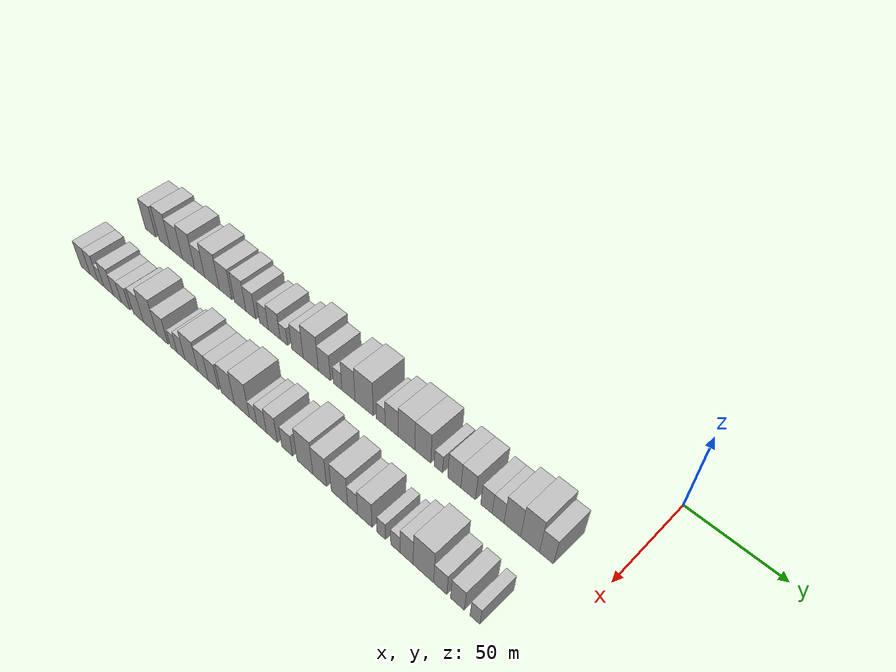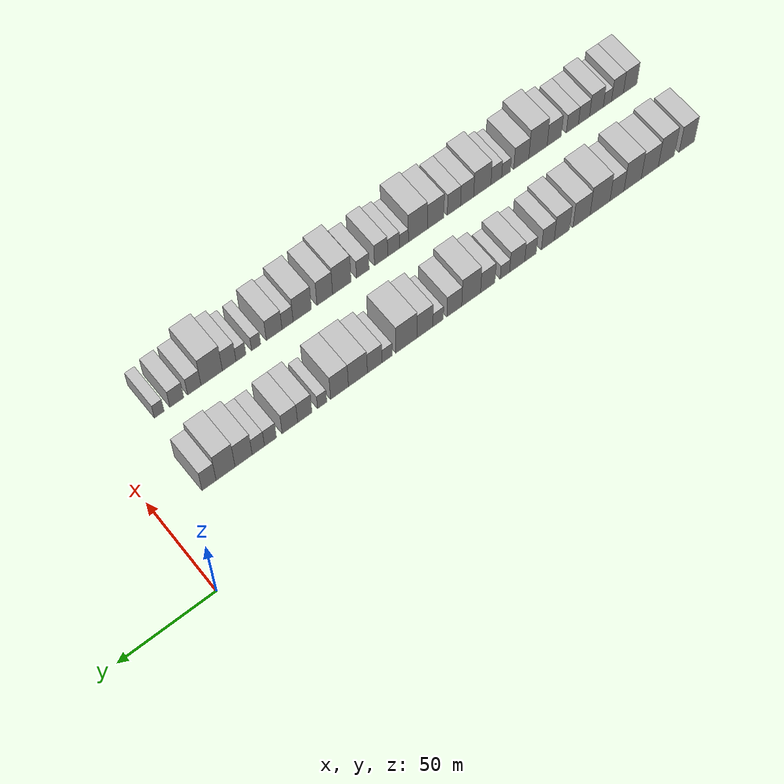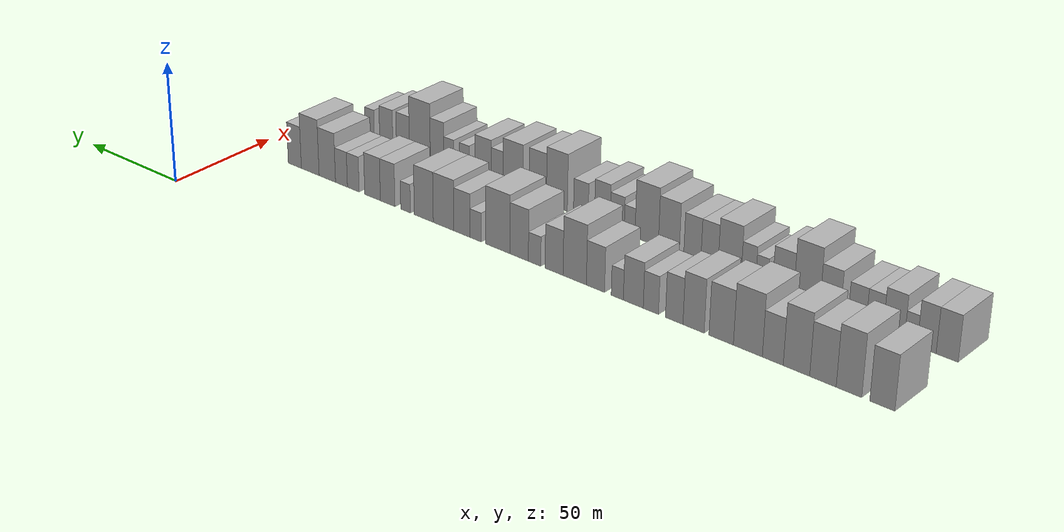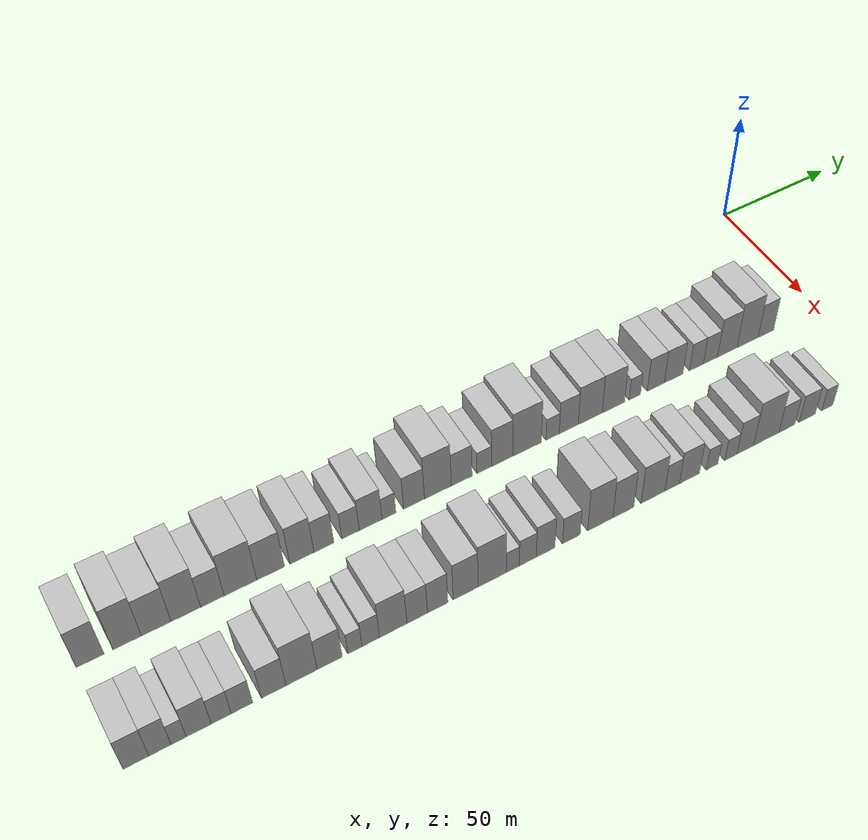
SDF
<sdf version="1.6">
 <world name="default">
  <model name="building_1">
   <static>1</static>
   <pose>50.0000 -295.3019 0 0.000000 0.000000 0.000000</pose>
   <link name="link">
    <pose>0 0 10.50 0 0 0</pose>
    <collision name="collision"><geometry><box><size>20.0000 9.3963 21.0000</size></box></geometry></collision>
    <visual name="visual">
     <cast_shadows>0</cast_shadows>
     <geometry><box><size>20.0000 9.3963 21.0000</size></box></geometry>
     <material>
      <script>
       <uri>model://HANNAS_wall/materials/scripts</uri>
       <uri>model://HANNAS_wall/materials/textures</uri>
       <name>vrc/HANNAS_wall</name>
      </script>
     </material>
    </visual>
   </link>
  </model>
  <model name="building_2">
   <static>1</static>
   <pose>50.0000 -282.7249 0 0.000000 0.000000 0.000000</pose>
   <link name="link">
    <pose>0 0 12.00 0 0 0</pose>
    <collision name="collision"><geometry><box><size>20.0000 9.7576 24.0000</size></box></geometry></collision>
    <visual name="visual">
     <cast_shadows>0</cast_shadows>
     <geometry><box><size>20.0000 9.7576 24.0000</size></box></geometry>
     <material>
      <script>
       <uri>model://HANNAS_wall/materials/scripts</uri>
       <uri>model://HANNAS_wall/materials/textures</uri>
       <name>vrc/HANNAS_wall</name>
      </script>
     </material>
    </visual>
   </link>
  </model>
  <model name="building_3">
   <static>1</static>
   <pose>50.0000 -272.7034 0 0.000000 0.000000 0.000000</pose>
   <link name="link">
    <pose>0 0 10.50 0 0 0</pose>
    <collision name="collision"><geometry><box><size>20.0000 10.2854 21.0000</size></box></geometry></collision>
    <visual name="visual">
     <cast_shadows>0</cast_shadows>
     <geometry><box><size>20.0000 10.2854 21.0000</size></box></geometry>
     <material>
      <script>
       <uri>model://HANNAS_wall/materials/scripts</uri>
       <uri>model://HANNAS_wall/materials/textures</uri>
       <name>vrc/HANNAS_wall</name>
      </script>
     </material>
    </visual>
   </link>
  </model>
  <model name="building_4">
   <static>1</static>
   <pose>50.0000 -262.3470 0 0.000000 0.000000 0.000000</pose>
   <link name="link">
    <pose>0 0 12.00 0 0 0</pose>
    <collision name="collision"><geometry><box><size>20.0000 10.4274 24.0000</size></box></geometry></collision>
    <visual name="visual">
     <cast_shadows>0</cast_shadows>
     <geometry><box><size>20.0000 10.4274 24.0000</size></box></geometry>
     <material>
      <script>
       <uri>model://HANNAS_wall/materials/scripts</uri>
       <uri>model://HANNAS_wall/materials/textures</uri>
       <name>vrc/HANNAS_wall</name>
      </script>
     </material>
    </visual>
   </link>
  </model>
  <model name="building_5">
   <static>1</static>
   <pose>50.0000 -252.9480 0 0.000000 0.000000 0.000000</pose>
   <link name="link">
    <pose>0 0 9.00 0 0 0</pose>
    <collision name="collision"><geometry><box><size>20.0000 8.3706 18.0000</size></box></geometry></collision>
    <visual name="visual">
     <cast_shadows>0</cast_shadows>
     <geometry><box><size>20.0000 8.3706 18.0000</size></box></geometry>
     <material>
      <script>
       <uri>model://HANNAS_wall/materials/scripts</uri>
       <uri>model://HANNAS_wall/materials/textures</uri>
       <name>vrc/HANNAS_wall</name>
      </script>
     </material>
    </visual>
   </link>
  </model>
  <model name="building_6">
   <static>1</static>
   <pose>50.0000 -242.8675 0 0.000000 0.000000 0.000000</pose>
   <link name="link">
    <pose>0 0 12.00 0 0 0</pose>
    <collision name="collision"><geometry><box><size>20.0000 11.7904 24.0000</size></box></geometry></collision>
    <visual name="visual">
     <cast_shadows>0</cast_shadows>
     <geometry><box><size>20.0000 11.7904 24.0000</size></box></geometry>
     <material>
      <script>
       <uri>model://HANNAS_wall/materials/scripts</uri>
       <uri>model://HANNAS_wall/materials/textures</uri>
       <name>vrc/HANNAS_wall</name>
      </script>
     </material>
    </visual>
   </link>
  </model>
  <model name="building_7">
   <static>1</static>
   <pose>50.0000 -231.9022 0 0.000000 0.000000 0.000000</pose>
   <link name="link">
    <pose>0 0 10.50 0 0 0</pose>
    <collision name="collision"><geometry><box><size>20.0000 10.1402 21.0000</size></box></geometry></collision>
    <visual name="visual">
     <cast_shadows>0</cast_shadows>
     <geometry><box><size>20.0000 10.1402 21.0000</size></box></geometry>
     <material>
      <script>
       <uri>model://HANNAS_wall/materials/scripts</uri>
       <uri>model://HANNAS_wall/materials/textures</uri>
       <name>vrc/HANNAS_wall</name>
      </script>
     </material>
    </visual>
   </link>
  </model>
  <model name="building_8">
   <static>1</static>
   <pose>50.0000 -220.3504 0 0.000000 0.000000 0.000000</pose>
   <link name="link">
    <pose>0 0 10.50 0 0 0</pose>
    <collision name="collision"><geometry><box><size>20.0000 8.9634 21.0000</size></box></geometry></collision>
    <visual name="visual">
     <cast_shadows>0</cast_shadows>
     <geometry><box><size>20.0000 8.9634 21.0000</size></box></geometry>
     <material>
      <script>
       <uri>model://HANNAS_wall/materials/scripts</uri>
       <uri>model://HANNAS_wall/materials/textures</uri>
       <name>vrc/HANNAS_wall</name>
      </script>
     </material>
    </visual>
   </link>
  </model>
  <model name="building_9">
   <static>1</static>
   <pose>50.0000 -212.1136 0 0.000000 0.000000 0.000000</pose>
   <link name="link">
    <pose>0 0 9.00 0 0 0</pose>
    <collision name="collision"><geometry><box><size>20.0000 7.5102 18.0000</size></box></geometry></collision>
    <visual name="visual">
     <cast_shadows>0</cast_shadows>
     <geometry><box><size>20.0000 7.5102 18.0000</size></box></geometry>
     <material>
      <script>
       <uri>model://HANNAS_wall/materials/scripts</uri>
       <uri>model://HANNAS_wall/materials/textures</uri>
       <name>vrc/HANNAS_wall</name>
      </script>
     </material>
    </visual>
   </link>
  </model>
  <model name="building_10">
   <static>1</static>
   <pose>50.0000 -202.0355 0 0.000000 0.000000 0.000000</pose>
   <link name="link">
    <pose>0 0 7.50 0 0 0</pose>
    <collision name="collision"><geometry><box><size>20.0000 6.6459 15.0000</size></box></geometry></collision>
    <visual name="visual">
     <cast_shadows>0</cast_shadows>
     <geometry><box><size>20.0000 6.6459 15.0000</size></box></geometry>
     <material>
      <script>
       <uri>model://HANNAS_wall/materials/scripts</uri>
       <uri>model://HANNAS_wall/materials/textures</uri>
       <name>vrc/HANNAS_wall</name>
      </script>
     </material>
    </visual>
   </link>
  </model>
  <model name="building_11">
   <static>1</static>
   <pose>50.0000 -194.3298 0 0.000000 0.000000 0.000000</pose>
   <link name="link">
    <pose>0 0 9.00 0 0 0</pose>
    <collision name="collision"><geometry><box><size>20.0000 8.7655 18.0000</size></box></geometry></collision>
    <visual name="visual">
     <cast_shadows>0</cast_shadows>
     <geometry><box><size>20.0000 8.7655 18.0000</size></box></geometry>
     <material>
      <script>
       <uri>model://HANNAS_wall/materials/scripts</uri>
       <uri>model://HANNAS_wall/materials/textures</uri>
       <name>vrc/HANNAS_wall</name>
      </script>
     </material>
    </visual>
   </link>
  </model>
  <model name="building_12">
   <static>1</static>
   <pose>50.0000 -187.2509 0 0.000000 0.000000 0.000000</pose>
   <link name="link">
    <pose>0 0 6.00 0 0 0</pose>
    <collision name="collision"><geometry><box><size>20.0000 5.3923 12.0000</size></box></geometry></collision>
    <visual name="visual">
     <cast_shadows>0</cast_shadows>
     <geometry><box><size>20.0000 5.3923 12.0000</size></box></geometry>
     <material>
      <script>
       <uri>model://HANNAS_wall/materials/scripts</uri>
       <uri>model://HANNAS_wall/materials/textures</uri>
       <name>vrc/HANNAS_wall</name>
      </script>
     </material>
    </visual>
   </link>
  </model>
  <model name="building_13">
   <static>1</static>
   <pose>50.0000 -177.4368 0 0.000000 0.000000 0.000000</pose>
   <link name="link">
    <pose>0 0 9.00 0 0 0</pose>
    <collision name="collision"><geometry><box><size>20.0000 8.2360 18.0000</size></box></geometry></collision>
    <visual name="visual">
     <cast_shadows>0</cast_shadows>
     <geometry><box><size>20.0000 8.2360 18.0000</size></box></geometry>
     <material>
      <script>
       <uri>model://HANNAS_wall/materials/scripts</uri>
       <uri>model://HANNAS_wall/materials/textures</uri>
       <name>vrc/HANNAS_wall</name>
      </script>
     </material>
    </visual>
   </link>
  </model>
  <model name="building_14">
   <static>1</static>
   <pose>50.0000 -167.9649 0 0.000000 0.000000 0.000000</pose>
   <link name="link">
    <pose>0 0 12.00 0 0 0</pose>
    <collision name="collision"><geometry><box><size>20.0000 10.7077 24.0000</size></box></geometry></collision>
    <visual name="visual">
     <cast_shadows>0</cast_shadows>
     <geometry><box><size>20.0000 10.7077 24.0000</size></box></geometry>
     <material>
      <script>
       <uri>model://HANNAS_wall/materials/scripts</uri>
       <uri>model://HANNAS_wall/materials/textures</uri>
       <name>vrc/HANNAS_wall</name>
      </script>
     </material>
    </visual>
   </link>
  </model>
  <model name="building_15">
   <static>1</static>
   <pose>50.0000 -158.4264 0 0.000000 0.000000 0.000000</pose>
   <link name="link">
    <pose>0 0 9.00 0 0 0</pose>
    <collision name="collision"><geometry><box><size>20.0000 8.3694 18.0000</size></box></geometry></collision>
    <visual name="visual">
     <cast_shadows>0</cast_shadows>
     <geometry><box><size>20.0000 8.3694 18.0000</size></box></geometry>
     <material>
      <script>
       <uri>model://HANNAS_wall/materials/scripts</uri>
       <uri>model://HANNAS_wall/materials/textures</uri>
       <name>vrc/HANNAS_wall</name>
      </script>
     </material>
    </visual>
   </link>
  </model>
  <model name="building_16">
   <static>1</static>
   <pose>50.0000 -149.3047 0 0.000000 0.000000 0.000000</pose>
   <link name="link">
    <pose>0 0 6.00 0 0 0</pose>
    <collision name="collision"><geometry><box><size>20.0000 5.8741 12.0000</size></box></geometry></collision>
    <visual name="visual">
     <cast_shadows>0</cast_shadows>
     <geometry><box><size>20.0000 5.8741 12.0000</size></box></geometry>
     <material>
      <script>
       <uri>model://HANNAS_wall/materials/scripts</uri>
       <uri>model://HANNAS_wall/materials/textures</uri>
       <name>vrc/HANNAS_wall</name>
      </script>
     </material>
    </visual>
   </link>
  </model>
  <model name="building_17">
   <static>1</static>
   <pose>50.0000 -141.9949 0 0.000000 0.000000 0.000000</pose>
   <link name="link">
    <pose>0 0 10.50 0 0 0</pose>
    <collision name="collision"><geometry><box><size>20.0000 8.7454 21.0000</size></box></geometry></collision>
    <visual name="visual">
     <cast_shadows>0</cast_shadows>
     <geometry><box><size>20.0000 8.7454 21.0000</size></box></geometry>
     <material>
      <script>
       <uri>model://HANNAS_wall/materials/scripts</uri>
       <uri>model://HANNAS_wall/materials/textures</uri>
       <name>vrc/HANNAS_wall</name>
      </script>
     </material>
    </visual>
   </link>
  </model>
  <model name="building_18">
   <static>1</static>
   <pose>50.0000 -131.6551 0 0.000000 0.000000 0.000000</pose>
   <link name="link">
    <pose>0 0 12.00 0 0 0</pose>
    <collision name="collision"><geometry><box><size>20.0000 11.9344 24.0000</size></box></geometry></collision>
    <visual name="visual">
     <cast_shadows>0</cast_shadows>
     <geometry><box><size>20.0000 11.9344 24.0000</size></box></geometry>
     <material>
      <script>
       <uri>model://HANNAS_wall/materials/scripts</uri>
       <uri>model://HANNAS_wall/materials/textures</uri>
       <name>vrc/HANNAS_wall</name>
      </script>
     </material>
    </visual>
   </link>
  </model>
  <model name="building_19">
   <static>1</static>
   <pose>50.0000 -120.9007 0 0.000000 0.000000 0.000000</pose>
   <link name="link">
    <pose>0 0 6.00 0 0 0</pose>
    <collision name="collision"><geometry><box><size>20.0000 5.5743 12.0000</size></box></geometry></collision>
    <visual name="visual">
     <cast_shadows>0</cast_shadows>
     <geometry><box><size>20.0000 5.5743 12.0000</size></box></geometry>
     <material>
      <script>
       <uri>model://HANNAS_wall/materials/scripts</uri>
       <uri>model://HANNAS_wall/materials/textures</uri>
       <name>vrc/HANNAS_wall</name>
      </script>
     </material>
    </visual>
   </link>
  </model>
  <model name="building_20">
   <static>1</static>
   <pose>50.0000 -114.0491 0 0.000000 0.000000 0.000000</pose>
   <link name="link">
    <pose>0 0 9.00 0 0 0</pose>
    <collision name="collision"><geometry><box><size>20.0000 8.1289 18.0000</size></box></geometry></collision>
    <visual name="visual">
     <cast_shadows>0</cast_shadows>
     <geometry><box><size>20.0000 8.1289 18.0000</size></box></geometry>
     <material>
      <script>
       <uri>model://HANNAS_wall/materials/scripts</uri>
       <uri>model://HANNAS_wall/materials/textures</uri>
       <name>vrc/HANNAS_wall</name>
      </script>
     </material>
    </visual>
   </link>
  </model>
  <model name="building_21">
   <static>1</static>
   <pose>50.0000 -104.8026 0 0.000000 0.000000 0.000000</pose>
   <link name="link">
    <pose>0 0 10.50 0 0 0</pose>
    <collision name="collision"><geometry><box><size>20.0000 10.3641 21.0000</size></box></geometry></collision>
    <visual name="visual">
     <cast_shadows>0</cast_shadows>
     <geometry><box><size>20.0000 10.3641 21.0000</size></box></geometry>
     <material>
      <script>
       <uri>model://HANNAS_wall/materials/scripts</uri>
       <uri>model://HANNAS_wall/materials/textures</uri>
       <name>vrc/HANNAS_wall</name>
      </script>
     </material>
    </visual>
   </link>
  </model>
  <model name="building_22">
   <static>1</static>
   <pose>50.0000 -94.7582 0 0.000000 0.000000 0.000000</pose>
   <link name="link">
    <pose>0 0 10.50 0 0 0</pose>
    <collision name="collision"><geometry><box><size>20.0000 9.7247 21.0000</size></box></geometry></collision>
    <visual name="visual">
     <cast_shadows>0</cast_shadows>
     <geometry><box><size>20.0000 9.7247 21.0000</size></box></geometry>
     <material>
      <script>
       <uri>model://HANNAS_wall/materials/scripts</uri>
       <uri>model://HANNAS_wall/materials/textures</uri>
       <name>vrc/HANNAS_wall</name>
      </script>
     </material>
    </visual>
   </link>
  </model>
  <model name="building_23">
   <static>1</static>
   <pose>50.0000 -85.3708 0 0.000000 0.000000 0.000000</pose>
   <link name="link">
    <pose>0 0 6.00 0 0 0</pose>
    <collision name="collision"><geometry><box><size>20.0000 5.0501 12.0000</size></box></geometry></collision>
    <visual name="visual">
     <cast_shadows>0</cast_shadows>
     <geometry><box><size>20.0000 5.0501 12.0000</size></box></geometry>
     <material>
      <script>
       <uri>model://HANNAS_wall/materials/scripts</uri>
       <uri>model://HANNAS_wall/materials/textures</uri>
       <name>vrc/HANNAS_wall</name>
      </script>
     </material>
    </visual>
   </link>
  </model>
  <model name="building_24">
   <static>1</static>
   <pose>50.0000 -76.0046 0 0.000000 0.000000 0.000000</pose>
   <link name="link">
    <pose>0 0 9.00 0 0 0</pose>
    <collision name="collision"><geometry><box><size>20.0000 7.6823 18.0000</size></box></geometry></collision>
    <visual name="visual">
     <cast_shadows>0</cast_shadows>
     <geometry><box><size>20.0000 7.6823 18.0000</size></box></geometry>
     <material>
      <script>
       <uri>model://HANNAS_wall/materials/scripts</uri>
       <uri>model://HANNAS_wall/materials/textures</uri>
       <name>vrc/HANNAS_wall</name>
      </script>
     </material>
    </visual>
   </link>
  </model>
  <model name="building_25">
   <static>1</static>
   <pose>50.0000 -68.0026 0 0.000000 0.000000 0.000000</pose>
   <link name="link">
    <pose>0 0 9.00 0 0 0</pose>
    <collision name="collision"><geometry><box><size>20.0000 8.3216 18.0000</size></box></geometry></collision>
    <visual name="visual">
     <cast_shadows>0</cast_shadows>
     <geometry><box><size>20.0000 8.3216 18.0000</size></box></geometry>
     <material>
      <script>
       <uri>model://HANNAS_wall/materials/scripts</uri>
       <uri>model://HANNAS_wall/materials/textures</uri>
       <name>vrc/HANNAS_wall</name>
      </script>
     </material>
    </visual>
   </link>
  </model>
  <model name="building_26">
   <static>1</static>
   <pose>50.0000 -57.6527 0 0.000000 0.000000 0.000000</pose>
   <link name="link">
    <pose>0 0 7.50 0 0 0</pose>
    <collision name="collision"><geometry><box><size>20.0000 6.3781 15.0000</size></box></geometry></collision>
    <visual name="visual">
     <cast_shadows>0</cast_shadows>
     <geometry><box><size>20.0000 6.3781 15.0000</size></box></geometry>
     <material>
      <script>
       <uri>model://HANNAS_wall/materials/scripts</uri>
       <uri>model://HANNAS_wall/materials/textures</uri>
       <name>vrc/HANNAS_wall</name>
      </script>
     </material>
    </visual>
   </link>
  </model>
  <model name="building_27">
   <static>1</static>
   <pose>50.0000 -51.2100 0 0.000000 0.000000 0.000000</pose>
   <link name="link">
    <pose>0 0 7.50 0 0 0</pose>
    <collision name="collision"><geometry><box><size>20.0000 6.5072 15.0000</size></box></geometry></collision>
    <visual name="visual">
     <cast_shadows>0</cast_shadows>
     <geometry><box><size>20.0000 6.5072 15.0000</size></box></geometry>
     <material>
      <script>
       <uri>model://HANNAS_wall/materials/scripts</uri>
       <uri>model://HANNAS_wall/materials/textures</uri>
       <name>vrc/HANNAS_wall</name>
      </script>
     </material>
    </visual>
   </link>
  </model>
  <model name="building_28">
   <static>1</static>
   <pose>50.0000 -43.4362 0 0.000000 0.000000 0.000000</pose>
   <link name="link">
    <pose>0 0 10.50 0 0 0</pose>
    <collision name="collision"><geometry><box><size>20.0000 9.0404 21.0000</size></box></geometry></collision>
    <visual name="visual">
     <cast_shadows>0</cast_shadows>
     <geometry><box><size>20.0000 9.0404 21.0000</size></box></geometry>
     <material>
      <script>
       <uri>model://HANNAS_wall/materials/scripts</uri>
       <uri>model://HANNAS_wall/materials/textures</uri>
       <name>vrc/HANNAS_wall</name>
      </script>
     </material>
    </visual>
   </link>
  </model>
  <model name="building_29">
   <static>1</static>
   <pose>50.0000 -33.9522 0 0.000000 0.000000 0.000000</pose>
   <link name="link">
    <pose>0 0 12.00 0 0 0</pose>
    <collision name="collision"><geometry><box><size>20.0000 9.9278 24.0000</size></box></geometry></collision>
    <visual name="visual">
     <cast_shadows>0</cast_shadows>
     <geometry><box><size>20.0000 9.9278 24.0000</size></box></geometry>
     <material>
      <script>
       <uri>model://HANNAS_wall/materials/scripts</uri>
       <uri>model://HANNAS_wall/materials/textures</uri>
       <name>vrc/HANNAS_wall</name>
      </script>
     </material>
    </visual>
   </link>
  </model>
  <model name="building_30">
   <static>1</static>
   <pose>50.0000 -25.3044 0 0.000000 0.000000 0.000000</pose>
   <link name="link">
    <pose>0 0 9.00 0 0 0</pose>
    <collision name="collision"><geometry><box><size>20.0000 7.3676 18.0000</size></box></geometry></collision>
    <visual name="visual">
     <cast_shadows>0</cast_shadows>
     <geometry><box><size>20.0000 7.3676 18.0000</size></box></geometry>
     <material>
      <script>
       <uri>model://HANNAS_wall/materials/scripts</uri>
       <uri>model://HANNAS_wall/materials/textures</uri>
       <name>vrc/HANNAS_wall</name>
      </script>
     </material>
    </visual>
   </link>
  </model>
  <model name="building_59">
   <static>1</static>
   <pose>90.0000 -295.8047 0 0.000000 0.000000 0.000000</pose>
   <link name="link">
    <pose>0 0 9.00 0 0 0</pose>
    <collision name="collision"><geometry><box><size>20.0000 8.3906 18.0000</size></box></geometry></collision>
    <visual name="visual">
     <cast_shadows>0</cast_shadows>
     <geometry><box><size>20.0000 8.3906 18.0000</size></box></geometry>
     <material>
      <script>
       <uri>model://HANNAS_wall/materials/scripts</uri>
       <uri>model://HANNAS_wall/materials/textures</uri>
       <name>vrc/HANNAS_wall</name>
      </script>
     </material>
    </visual>
   </link>
  </model>
  <model name="building_60">
   <static>1</static>
   <pose>90.0000 -287.9691 0 0.000000 0.000000 0.000000</pose>
   <link name="link">
    <pose>0 0 9.00 0 0 0</pose>
    <collision name="collision"><geometry><box><size>20.0000 7.2805 18.0000</size></box></geometry></collision>
    <visual name="visual">
     <cast_shadows>0</cast_shadows>
     <geometry><box><size>20.0000 7.2805 18.0000</size></box></geometry>
     <material>
      <script>
       <uri>model://HANNAS_wall/materials/scripts</uri>
       <uri>model://HANNAS_wall/materials/textures</uri>
       <name>vrc/HANNAS_wall</name>
      </script>
     </material>
    </visual>
   </link>
  </model>
  <model name="building_61">
   <static>1</static>
   <pose>90.0000 -281.8356 0 0.000000 0.000000 0.000000</pose>
   <link name="link">
    <pose>0 0 6.00 0 0 0</pose>
    <collision name="collision"><geometry><box><size>20.0000 4.9866 12.0000</size></box></geometry></collision>
    <visual name="visual">
     <cast_shadows>0</cast_shadows>
     <geometry><box><size>20.0000 4.9866 12.0000</size></box></geometry>
     <material>
      <script>
       <uri>model://HANNAS_wall/materials/scripts</uri>
       <uri>model://HANNAS_wall/materials/textures</uri>
       <name>vrc/HANNAS_wall</name>
      </script>
     </material>
    </visual>
   </link>
  </model>
  <model name="building_62">
   <static>1</static>
   <pose>90.0000 -275.1544 0 0.000000 0.000000 0.000000</pose>
   <link name="link">
    <pose>0 0 9.00 0 0 0</pose>
    <collision name="collision"><geometry><box><size>20.0000 8.3758 18.0000</size></box></geometry></collision>
    <visual name="visual">
     <cast_shadows>0</cast_shadows>
     <geometry><box><size>20.0000 8.3758 18.0000</size></box></geometry>
     <material>
      <script>
       <uri>model://HANNAS_wall/materials/scripts</uri>
       <uri>model://HANNAS_wall/materials/textures</uri>
       <name>vrc/HANNAS_wall</name>
      </script>
     </material>
    </visual>
   </link>
  </model>
  <model name="building_63">
   <static>1</static>
   <pose>90.0000 -267.5878 0 0.000000 0.000000 0.000000</pose>
   <link name="link">
    <pose>0 0 7.50 0 0 0</pose>
    <collision name="collision"><geometry><box><size>20.0000 6.7573 15.0000</size></box></geometry></collision>
    <visual name="visual">
     <cast_shadows>0</cast_shadows>
     <geometry><box><size>20.0000 6.7573 15.0000</size></box></geometry>
     <material>
      <script>
       <uri>model://HANNAS_wall/materials/scripts</uri>
       <uri>model://HANNAS_wall/materials/textures</uri>
       <name>vrc/HANNAS_wall</name>
      </script>
     </material>
    </visual>
   </link>
  </model>
  <model name="building_64">
   <static>1</static>
   <pose>90.0000 -260.5547 0 0.000000 0.000000 0.000000</pose>
   <link name="link">
    <pose>0 0 7.50 0 0 0</pose>
    <collision name="collision"><geometry><box><size>20.0000 7.3090 15.0000</size></box></geometry></collision>
    <visual name="visual">
     <cast_shadows>0</cast_shadows>
     <geometry><box><size>20.0000 7.3090 15.0000</size></box></geometry>
     <material>
      <script>
       <uri>model://HANNAS_wall/materials/scripts</uri>
       <uri>model://HANNAS_wall/materials/textures</uri>
       <name>vrc/HANNAS_wall</name>
      </script>
     </material>
    </visual>
   </link>
  </model>
  <model name="building_65">
   <static>1</static>
   <pose>90.0000 -249.6534 0 0.000000 0.000000 0.000000</pose>
   <link name="link">
    <pose>0 0 9.00 0 0 0</pose>
    <collision name="collision"><geometry><box><size>20.0000 8.4936 18.0000</size></box></geometry></collision>
    <visual name="visual">
     <cast_shadows>0</cast_shadows>
     <geometry><box><size>20.0000 8.4936 18.0000</size></box></geometry>
     <material>
      <script>
       <uri>model://HANNAS_wall/materials/scripts</uri>
       <uri>model://HANNAS_wall/materials/textures</uri>
       <name>vrc/HANNAS_wall</name>
      </script>
     </material>
    </visual>
   </link>
  </model>
  <model name="building_66">
   <static>1</static>
   <pose>90.0000 -239.9584 0 0.000000 0.000000 0.000000</pose>
   <link name="link">
    <pose>0 0 12.00 0 0 0</pose>
    <collision name="collision"><geometry><box><size>20.0000 10.8964 24.0000</size></box></geometry></collision>
    <visual name="visual">
     <cast_shadows>0</cast_shadows>
     <geometry><box><size>20.0000 10.8964 24.0000</size></box></geometry>
     <material>
      <script>
       <uri>model://HANNAS_wall/materials/scripts</uri>
       <uri>model://HANNAS_wall/materials/textures</uri>
       <name>vrc/HANNAS_wall</name>
      </script>
     </material>
    </visual>
   </link>
  </model>
  <model name="building_67">
   <static>1</static>
   <pose>90.0000 -230.0324 0 0.000000 0.000000 0.000000</pose>
   <link name="link">
    <pose>0 0 9.00 0 0 0</pose>
    <collision name="collision"><geometry><box><size>20.0000 8.9557 18.0000</size></box></geometry></collision>
    <visual name="visual">
     <cast_shadows>0</cast_shadows>
     <geometry><box><size>20.0000 8.9557 18.0000</size></box></geometry>
     <material>
      <script>
       <uri>model://HANNAS_wall/materials/scripts</uri>
       <uri>model://HANNAS_wall/materials/textures</uri>
       <name>vrc/HANNAS_wall</name>
      </script>
     </material>
    </visual>
   </link>
  </model>
  <model name="building_68">
   <static>1</static>
   <pose>90.0000 -220.9861 0 0.000000 0.000000 0.000000</pose>
   <link name="link">
    <pose>0 0 6.00 0 0 0</pose>
    <collision name="collision"><geometry><box><size>20.0000 5.1369 12.0000</size></box></geometry></collision>
    <visual name="visual">
     <cast_shadows>0</cast_shadows>
     <geometry><box><size>20.0000 5.1369 12.0000</size></box></geometry>
     <material>
      <script>
       <uri>model://HANNAS_wall/materials/scripts</uri>
       <uri>model://HANNAS_wall/materials/textures</uri>
       <name>vrc/HANNAS_wall</name>
      </script>
     </material>
    </visual>
   </link>
  </model>
  <model name="building_69">
   <static>1</static>
   <pose>90.0000 -215.2652 0 0.000000 0.000000 0.000000</pose>
   <link name="link">
    <pose>0 0 7.50 0 0 0</pose>
    <collision name="collision"><geometry><box><size>20.0000 6.3049 15.0000</size></box></geometry></collision>
    <visual name="visual">
     <cast_shadows>0</cast_shadows>
     <geometry><box><size>20.0000 6.3049 15.0000</size></box></geometry>
     <material>
      <script>
       <uri>model://HANNAS_wall/materials/scripts</uri>
       <uri>model://HANNAS_wall/materials/textures</uri>
       <name>vrc/HANNAS_wall</name>
      </script>
     </material>
    </visual>
   </link>
  </model>
  <model name="building_70">
   <static>1</static>
   <pose>90.0000 -207.0639 0 0.000000 0.000000 0.000000</pose>
   <link name="link">
    <pose>0 0 10.50 0 0 0</pose>
    <collision name="collision"><geometry><box><size>20.0000 10.0977 21.0000</size></box></geometry></collision>
    <visual name="visual">
     <cast_shadows>0</cast_shadows>
     <geometry><box><size>20.0000 10.0977 21.0000</size></box></geometry>
     <material>
      <script>
       <uri>model://HANNAS_wall/materials/scripts</uri>
       <uri>model://HANNAS_wall/materials/textures</uri>
       <name>vrc/HANNAS_wall</name>
      </script>
     </material>
    </visual>
   </link>
  </model>
  <model name="building_71">
   <static>1</static>
   <pose>90.0000 -198.2027 0 0.000000 0.000000 0.000000</pose>
   <link name="link">
    <pose>0 0 9.00 0 0 0</pose>
    <collision name="collision"><geometry><box><size>20.0000 7.6246 18.0000</size></box></geometry></collision>
    <visual name="visual">
     <cast_shadows>0</cast_shadows>
     <geometry><box><size>20.0000 7.6246 18.0000</size></box></geometry>
     <material>
      <script>
       <uri>model://HANNAS_wall/materials/scripts</uri>
       <uri>model://HANNAS_wall/materials/textures</uri>
       <name>vrc/HANNAS_wall</name>
      </script>
     </material>
    </visual>
   </link>
  </model>
  <model name="building_72">
   <static>1</static>
   <pose>90.0000 -190.5527 0 0.000000 0.000000 0.000000</pose>
   <link name="link">
    <pose>0 0 9.00 0 0 0</pose>
    <collision name="collision"><geometry><box><size>20.0000 7.6754 18.0000</size></box></geometry></collision>
    <visual name="visual">
     <cast_shadows>0</cast_shadows>
     <geometry><box><size>20.0000 7.6754 18.0000</size></box></geometry>
     <material>
      <script>
       <uri>model://HANNAS_wall/materials/scripts</uri>
       <uri>model://HANNAS_wall/materials/textures</uri>
       <name>vrc/HANNAS_wall</name>
      </script>
     </material>
    </visual>
   </link>
  </model>
  <model name="building_73">
   <static>1</static>
   <pose>90.0000 -179.9525 0 0.000000 0.000000 0.000000</pose>
   <link name="link">
    <pose>0 0 10.50 0 0 0</pose>
    <collision name="collision"><geometry><box><size>20.0000 9.5250 21.0000</size></box></geometry></collision>
    <visual name="visual">
     <cast_shadows>0</cast_shadows>
     <geometry><box><size>20.0000 9.5250 21.0000</size></box></geometry>
     <material>
      <script>
       <uri>model://HANNAS_wall/materials/scripts</uri>
       <uri>model://HANNAS_wall/materials/textures</uri>
       <name>vrc/HANNAS_wall</name>
      </script>
     </material>
    </visual>
   </link>
  </model>
  <model name="building_74">
   <static>1</static>
   <pose>90.0000 -169.7676 0 0.000000 0.000000 0.000000</pose>
   <link name="link">
    <pose>0 0 12.00 0 0 0</pose>
    <collision name="collision"><geometry><box><size>20.0000 10.8448 24.0000</size></box></geometry></collision>
    <visual name="visual">
     <cast_shadows>0</cast_shadows>
     <geometry><box><size>20.0000 10.8448 24.0000</size></box></geometry>
     <material>
      <script>
       <uri>model://HANNAS_wall/materials/scripts</uri>
       <uri>model://HANNAS_wall/materials/textures</uri>
       <name>vrc/HANNAS_wall</name>
      </script>
     </material>
    </visual>
   </link>
  </model>
  <model name="building_75">
   <static>1</static>
   <pose>90.0000 -161.8000 0 0.000000 0.000000 0.000000</pose>
   <link name="link">
    <pose>0 0 6.00 0 0 0</pose>
    <collision name="collision"><geometry><box><size>20.0000 5.0904 12.0000</size></box></geometry></collision>
    <visual name="visual">
     <cast_shadows>0</cast_shadows>
     <geometry><box><size>20.0000 5.0904 12.0000</size></box></geometry>
     <material>
      <script>
       <uri>model://HANNAS_wall/materials/scripts</uri>
       <uri>model://HANNAS_wall/materials/textures</uri>
       <name>vrc/HANNAS_wall</name>
      </script>
     </material>
    </visual>
   </link>
  </model>
  <model name="building_76">
   <static>1</static>
   <pose>90.0000 -155.9297 0 0.000000 0.000000 0.000000</pose>
   <link name="link">
    <pose>0 0 7.50 0 0 0</pose>
    <collision name="collision"><geometry><box><size>20.0000 6.6503 15.0000</size></box></geometry></collision>
    <visual name="visual">
     <cast_shadows>0</cast_shadows>
     <geometry><box><size>20.0000 6.6503 15.0000</size></box></geometry>
     <material>
      <script>
       <uri>model://HANNAS_wall/materials/scripts</uri>
       <uri>model://HANNAS_wall/materials/textures</uri>
       <name>vrc/HANNAS_wall</name>
      </script>
     </material>
    </visual>
   </link>
  </model>
  <model name="building_77">
   <static>1</static>
   <pose>90.0000 -148.8822 0 0.000000 0.000000 0.000000</pose>
   <link name="link">
    <pose>0 0 9.00 0 0 0</pose>
    <collision name="collision"><geometry><box><size>20.0000 7.4447 18.0000</size></box></geometry></collision>
    <visual name="visual">
     <cast_shadows>0</cast_shadows>
     <geometry><box><size>20.0000 7.4447 18.0000</size></box></geometry>
     <material>
      <script>
       <uri>model://HANNAS_wall/materials/scripts</uri>
       <uri>model://HANNAS_wall/materials/textures</uri>
       <name>vrc/HANNAS_wall</name>
      </script>
     </material>
    </visual>
   </link>
  </model>
  <model name="building_78">
   <static>1</static>
   <pose>90.0000 -138.5911 0 0.000000 0.000000 0.000000</pose>
   <link name="link">
    <pose>0 0 7.50 0 0 0</pose>
    <collision name="collision"><geometry><box><size>20.0000 7.1375 15.0000</size></box></geometry></collision>
    <visual name="visual">
     <cast_shadows>0</cast_shadows>
     <geometry><box><size>20.0000 7.1375 15.0000</size></box></geometry>
     <material>
      <script>
       <uri>model://HANNAS_wall/materials/scripts</uri>
       <uri>model://HANNAS_wall/materials/textures</uri>
       <name>vrc/HANNAS_wall</name>
      </script>
     </material>
    </visual>
   </link>
  </model>
  <model name="building_79">
   <static>1</static>
   <pose>90.0000 -126.8626 0 0.000000 0.000000 0.000000</pose>
   <link name="link">
    <pose>0 0 12.00 0 0 0</pose>
    <collision name="collision"><geometry><box><size>20.0000 10.3194 24.0000</size></box></geometry></collision>
    <visual name="visual">
     <cast_shadows>0</cast_shadows>
     <geometry><box><size>20.0000 10.3194 24.0000</size></box></geometry>
     <material>
      <script>
       <uri>model://HANNAS_wall/materials/scripts</uri>
       <uri>model://HANNAS_wall/materials/textures</uri>
       <name>vrc/HANNAS_wall</name>
      </script>
     </material>
    </visual>
   </link>
  </model>
  <model name="building_80">
   <static>1</static>
   <pose>90.0000 -117.3538 0 0.000000 0.000000 0.000000</pose>
   <link name="link">
    <pose>0 0 10.50 0 0 0</pose>
    <collision name="collision"><geometry><box><size>20.0000 8.6983 21.0000</size></box></geometry></collision>
    <visual name="visual">
     <cast_shadows>0</cast_shadows>
     <geometry><box><size>20.0000 8.6983 21.0000</size></box></geometry>
     <material>
      <script>
       <uri>model://HANNAS_wall/materials/scripts</uri>
       <uri>model://HANNAS_wall/materials/textures</uri>
       <name>vrc/HANNAS_wall</name>
      </script>
     </material>
    </visual>
   </link>
  </model>
  <model name="building_81">
   <static>1</static>
   <pose>90.0000 -104.9632 0 0.000000 0.000000 0.000000</pose>
   <link name="link">
    <pose>0 0 10.50 0 0 0</pose>
    <collision name="collision"><geometry><box><size>20.0000 10.0830 21.0000</size></box></geometry></collision>
    <visual name="visual">
     <cast_shadows>0</cast_shadows>
     <geometry><box><size>20.0000 10.0830 21.0000</size></box></geometry>
     <material>
      <script>
       <uri>model://HANNAS_wall/materials/scripts</uri>
       <uri>model://HANNAS_wall/materials/textures</uri>
       <name>vrc/HANNAS_wall</name>
      </script>
     </material>
    </visual>
   </link>
  </model>
  <model name="building_82">
   <static>1</static>
   <pose>90.0000 -96.8549 0 0.000000 0.000000 0.000000</pose>
   <link name="link">
    <pose>0 0 7.50 0 0 0</pose>
    <collision name="collision"><geometry><box><size>20.0000 6.1337 15.0000</size></box></geometry></collision>
    <visual name="visual">
     <cast_shadows>0</cast_shadows>
     <geometry><box><size>20.0000 6.1337 15.0000</size></box></geometry>
     <material>
      <script>
       <uri>model://HANNAS_wall/materials/scripts</uri>
       <uri>model://HANNAS_wall/materials/textures</uri>
       <name>vrc/HANNAS_wall</name>
      </script>
     </material>
    </visual>
   </link>
  </model>
  <model name="building_83">
   <static>1</static>
   <pose>90.0000 -89.4924 0 0.000000 0.000000 0.000000</pose>
   <link name="link">
    <pose>0 0 9.00 0 0 0</pose>
    <collision name="collision"><geometry><box><size>20.0000 8.5912 18.0000</size></box></geometry></collision>
    <visual name="visual">
     <cast_shadows>0</cast_shadows>
     <geometry><box><size>20.0000 8.5912 18.0000</size></box></geometry>
     <material>
      <script>
       <uri>model://HANNAS_wall/materials/scripts</uri>
       <uri>model://HANNAS_wall/materials/textures</uri>
       <name>vrc/HANNAS_wall</name>
      </script>
     </material>
    </visual>
   </link>
  </model>
  <model name="building_84">
   <static>1</static>
   <pose>90.0000 -79.7045 0 0.000000 0.000000 0.000000</pose>
   <link name="link">
    <pose>0 0 6.00 0 0 0</pose>
    <collision name="collision"><geometry><box><size>20.0000 4.9846 12.0000</size></box></geometry></collision>
    <visual name="visual">
     <cast_shadows>0</cast_shadows>
     <geometry><box><size>20.0000 4.9846 12.0000</size></box></geometry>
     <material>
      <script>
       <uri>model://HANNAS_wall/materials/scripts</uri>
       <uri>model://HANNAS_wall/materials/textures</uri>
       <name>vrc/HANNAS_wall</name>
      </script>
     </material>
    </visual>
   </link>
  </model>
  <model name="building_85">
   <static>1</static>
   <pose>90.0000 -71.5318 0 0.000000 0.000000 0.000000</pose>
   <link name="link">
    <pose>0 0 6.00 0 0 0</pose>
    <collision name="collision"><geometry><box><size>20.0000 5.3607 12.0000</size></box></geometry></collision>
    <visual name="visual">
     <cast_shadows>0</cast_shadows>
     <geometry><box><size>20.0000 5.3607 12.0000</size></box></geometry>
     <material>
      <script>
       <uri>model://HANNAS_wall/materials/scripts</uri>
       <uri>model://HANNAS_wall/materials/textures</uri>
       <name>vrc/HANNAS_wall</name>
      </script>
     </material>
    </visual>
   </link>
  </model>
  <model name="building_86">
   <static>1</static>
   <pose>90.0000 -65.1769 0 0.000000 0.000000 0.000000</pose>
   <link name="link">
    <pose>0 0 9.00 0 0 0</pose>
    <collision name="collision"><geometry><box><size>20.0000 7.3492 18.0000</size></box></geometry></collision>
    <visual name="visual">
     <cast_shadows>0</cast_shadows>
     <geometry><box><size>20.0000 7.3492 18.0000</size></box></geometry>
     <material>
      <script>
       <uri>model://HANNAS_wall/materials/scripts</uri>
       <uri>model://HANNAS_wall/materials/textures</uri>
       <name>vrc/HANNAS_wall</name>
      </script>
     </material>
    </visual>
   </link>
  </model>
  <model name="building_87">
   <static>1</static>
   <pose>90.0000 -55.8147 0 0.000000 0.000000 0.000000</pose>
   <link name="link">
    <pose>0 0 12.00 0 0 0</pose>
    <collision name="collision"><geometry><box><size>20.0000 11.3751 24.0000</size></box></geometry></collision>
    <visual name="visual">
     <cast_shadows>0</cast_shadows>
     <geometry><box><size>20.0000 11.3751 24.0000</size></box></geometry>
     <material>
      <script>
       <uri>model://HANNAS_wall/materials/scripts</uri>
       <uri>model://HANNAS_wall/materials/textures</uri>
       <name>vrc/HANNAS_wall</name>
      </script>
     </material>
    </visual>
   </link>
  </model>
  <model name="building_88">
   <static>1</static>
   <pose>90.0000 -46.5287 0 0.000000 0.000000 0.000000</pose>
   <link name="link">
    <pose>0 0 7.50 0 0 0</pose>
    <collision name="collision"><geometry><box><size>20.0000 7.1969 15.0000</size></box></geometry></collision>
    <visual name="visual">
     <cast_shadows>0</cast_shadows>
     <geometry><box><size>20.0000 7.1969 15.0000</size></box></geometry>
     <material>
      <script>
       <uri>model://HANNAS_wall/materials/scripts</uri>
       <uri>model://HANNAS_wall/materials/textures</uri>
       <name>vrc/HANNAS_wall</name>
      </script>
     </material>
    </visual>
   </link>
  </model>
  <model name="building_89">
   <static>1</static>
   <pose>90.0000 -37.2517 0 0.000000 0.000000 0.000000</pose>
   <link name="link">
    <pose>0 0 7.50 0 0 0</pose>
    <collision name="collision"><geometry><box><size>20.0000 7.3571 15.0000</size></box></geometry></collision>
    <visual name="visual">
     <cast_shadows>0</cast_shadows>
     <geometry><box><size>20.0000 7.3571 15.0000</size></box></geometry>
     <material>
      <script>
       <uri>model://HANNAS_wall/materials/scripts</uri>
       <uri>model://HANNAS_wall/materials/textures</uri>
       <name>vrc/HANNAS_wall</name>
      </script>
     </material>
    </visual>
   </link>
  </model>
  <model name="building_90">
   <static>1</static>
   <pose>90.0000 -27.9895 0 0.000000 0.000000 0.000000</pose>
   <link name="link">
    <pose>0 0 6.00 0 0 0</pose>
    <collision name="collision"><geometry><box><size>20.0000 5.1672 12.0000</size></box></geometry></collision>
    <visual name="visual">
     <cast_shadows>0</cast_shadows>
     <geometry><box><size>20.0000 5.1672 12.0000</size></box></geometry>
     <material>
      <script>
       <uri>model://HANNAS_wall/materials/scripts</uri>
       <uri>model://HANNAS_wall/materials/textures</uri>
       <name>vrc/HANNAS_wall</name>
      </script>
     </material>
    </visual>
   </link>
  </model>
 </world>
</sdf>
